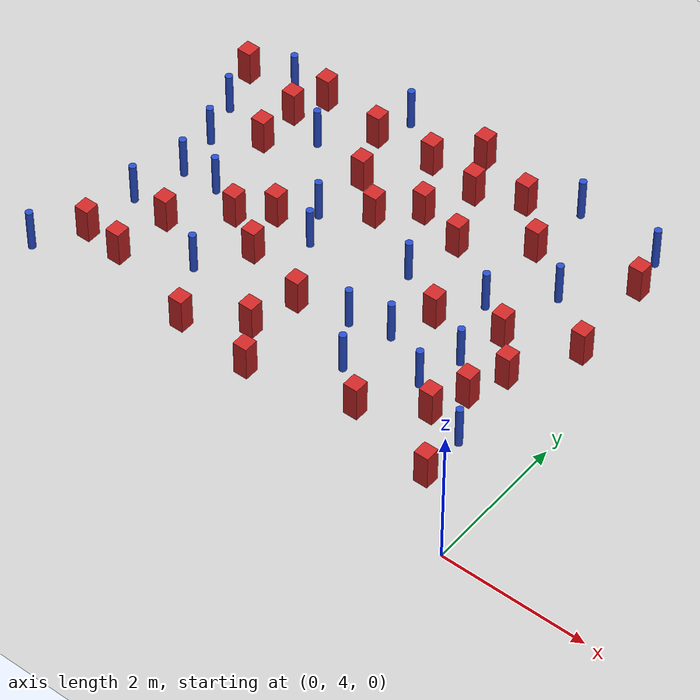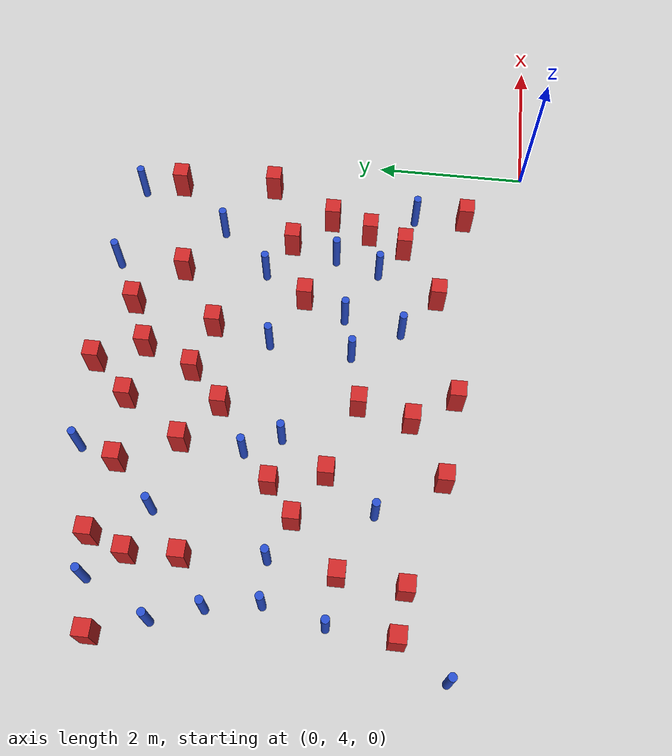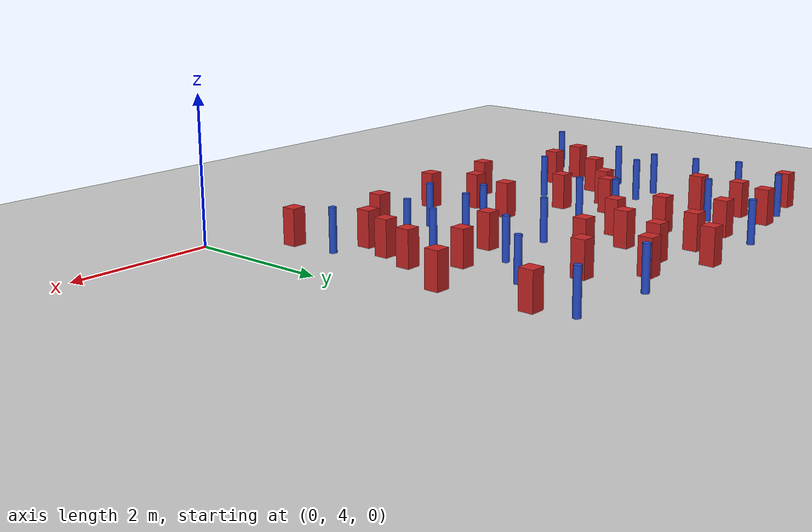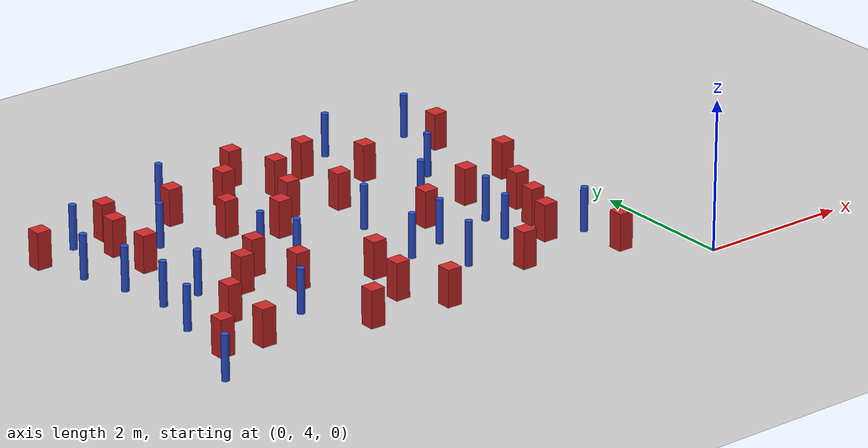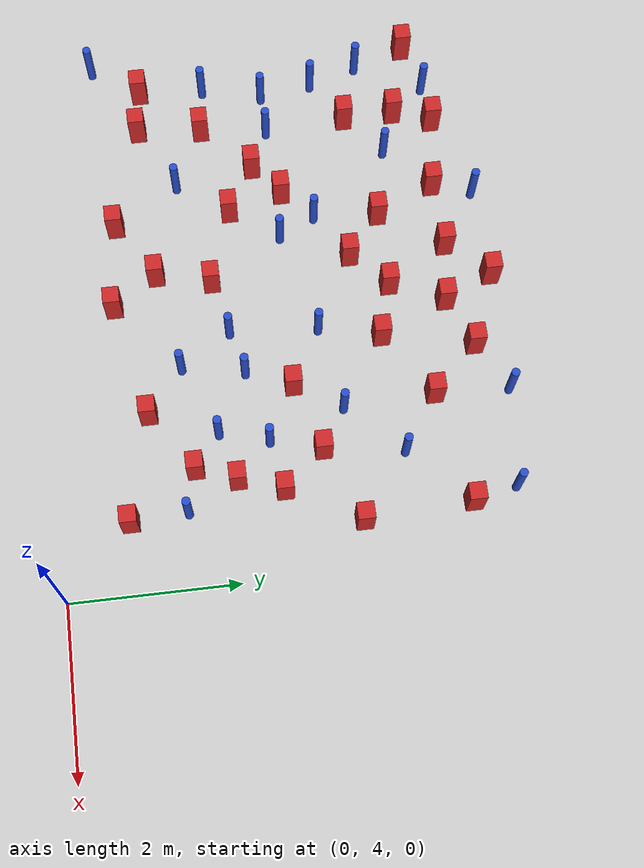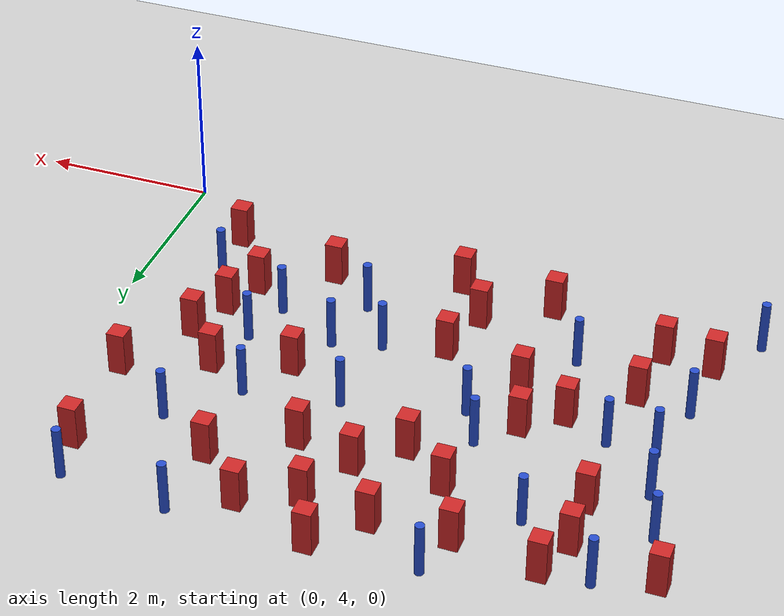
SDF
<sdf version="1.6">
 <world name="default">
  <model name="ground_plane">
   <static>1</static>
   <link name="link">
    <collision name="collision">
     <geometry><plane><normal>0 0 1</normal><size>100 100</size></plane></geometry>
     <surface><friction><ode><mu>100</mu><mu2>50</mu2></ode></friction></surface>
    </collision>
    <visual name="visual">
     <cast_shadows>0</cast_shadows>
     <geometry><plane><normal>0 0 1</normal><size>100 100</size></plane></geometry>
     <material>
      <ambient>1.0 1.0 1.0 1.0</ambient>
      <diffuse>0.8 0.8 0.8 1.0</diffuse>
      <specular>0.01 0.01 0.01 1.000000</specular>
     </material>
    </visual>
   </link>
  </model>
  <model name="square_post_obstacle3">
   <static>true</static>
   <pose>-3.91692092441 7.71348662594 -6.11067671241e-07 -5.50515727128e-06 -8.79689657224e-07 2.37013304536e-05</pose>
   <link name="link">
    <pose>0 0 0.25 0 -0 0</pose>
    <inertial>
     <mass>100</mass>
     <inertia>
      <ixx>0.166667</ixx>
      <ixy>0</ixy>
      <ixz>0</ixz>
      <iyy>0.166667</iyy>
      <iyz>0</iyz>
      <izz>0.166667</izz>
     </inertia>
    </inertial>
    <collision name="collision"><geometry><box><size>.2 .2 .5</size></box></geometry></collision>
    <visual name="visual">
     <geometry><box><size>.2 .2 .5</size></box></geometry>
     <material>
      <script><name>Gazebo/Red</name><uri>file://media/materials/scripts/gazebo.material</uri></script>
     </material>
    </visual>
   </link>
  </model>
  <model name="pole_obstacle2">
   <static>true</static>
   <pose>-1.79308534052 5.89661301325 -9.47619616065e-06 5.49618799737e-07 2.36310414061e-07 -1.550905348e-07</pose>
   <link name="link">
    <pose>0 0 0.3 0 -0 0</pose>
    <inertial>
     <mass>1</mass>
     <inertia><ixx>0.145833</ixx><ixy>0</ixy><ixz>0</ixz><iyy>0.145833</iyy><iyz>0</iyz><izz>0.125</izz></inertia>
    </inertial>
    <collision name="collision">
     <geometry><cylinder><radius>0.05</radius><length>.6</length></cylinder></geometry>
    </collision>
    <visual name="visual">
     <geometry><cylinder><radius>0.05</radius><length>.6</length></cylinder></geometry>
     <material>
      <script><name>Gazebo/Blue</name><uri>file://media/materials/scripts/gazebo.material</uri></script>
     </material>
    </visual>
   </link>
  </model>
  <model name="square_post_obstacle4">
   <static>true</static>
   <pose>-5.88233782899 6.05758240588 -6.11067671241e-07 -5.50515727128e-06 -8.79689657224e-07 2.37013304536e-05</pose>
   <link name="link">
    <pose>0 0 0.25 0 -0 0</pose>
    <inertial>
     <mass>100</mass>
     <inertia>
      <ixx>0.166667</ixx>
      <ixy>0</ixy>
      <ixz>0</ixz>
      <iyy>0.166667</iyy>
      <iyz>0</iyz>
      <izz>0.166667</izz>
     </inertia>
    </inertial>
    <collision name="collision"><geometry><box><size>.2 .2 .5</size></box></geometry></collision>
    <visual name="visual">
     <geometry><box><size>.2 .2 .5</size></box></geometry>
     <material>
      <script><name>Gazebo/Red</name><uri>file://media/materials/scripts/gazebo.material</uri></script>
     </material>
    </visual>
   </link>
  </model>
  <model name="square_post_obstacle6">
   <static>true</static>
   <pose>-5.84509082221 7.88563920167 -6.11067671241e-07 -5.50515727128e-06 -8.79689657224e-07 2.37013304536e-05</pose>
   <link name="link">
    <pose>0 0 0.25 0 -0 0</pose>
    <inertial>
     <mass>100</mass>
     <inertia>
      <ixx>0.166667</ixx>
      <ixy>0</ixy>
      <ixz>0</ixz>
      <iyy>0.166667</iyy>
      <iyz>0</iyz>
      <izz>0.166667</izz>
     </inertia>
    </inertial>
    <collision name="collision"><geometry><box><size>.2 .2 .5</size></box></geometry></collision>
    <visual name="visual">
     <geometry><box><size>.2 .2 .5</size></box></geometry>
     <material>
      <script><name>Gazebo/Red</name><uri>file://media/materials/scripts/gazebo.material</uri></script>
     </material>
    </visual>
   </link>
  </model>
  <model name="square_post_obstacle10">
   <static>true</static>
   <pose>-3.74693229084 5.9982552937 -6.11067671241e-07 -5.50515727128e-06 -8.79689657224e-07 2.37013304536e-05</pose>
   <link name="link">
    <pose>0 0 0.25 0 -0 0</pose>
    <inertial>
     <mass>100</mass>
     <inertia>
      <ixx>0.166667</ixx>
      <ixy>0</ixy>
      <ixz>0</ixz>
      <iyy>0.166667</iyy>
      <iyz>0</iyz>
      <izz>0.166667</izz>
     </inertia>
    </inertial>
    <collision name="collision"><geometry><box><size>.2 .2 .5</size></box></geometry></collision>
    <visual name="visual">
     <geometry><box><size>.2 .2 .5</size></box></geometry>
     <material>
      <script><name>Gazebo/Red</name><uri>file://media/materials/scripts/gazebo.material</uri></script>
     </material>
    </visual>
   </link>
  </model>
  <model name="pole_obstacle11">
   <static>true</static>
   <pose>-6.46527791398 6.12878476912 -9.47619616065e-06 5.49618799737e-07 2.36310414037e-07 -1.55090534814e-07</pose>
   <link name="link">
    <pose>0 0 0.3 0 -0 0</pose>
    <inertial>
     <mass>1</mass>
     <inertia><ixx>0.145833</ixx><ixy>0</ixy><ixz>0</ixz><iyy>0.145833</iyy><iyz>0</iyz><izz>0.125</izz></inertia>
    </inertial>
    <collision name="collision">
     <geometry><cylinder><radius>0.05</radius><length>.6</length></cylinder></geometry>
    </collision>
    <visual name="visual">
     <geometry><cylinder><radius>0.05</radius><length>.6</length></cylinder></geometry>
     <material>
      <script><name>Gazebo/Blue</name><uri>file://media/materials/scripts/gazebo.material</uri></script>
     </material>
    </visual>
   </link>
  </model>
  <model name="square_post_obstacle22">
   <static>true</static>
   <pose>-2.00911658762 8.48687081299 -6.11067671241e-07 -5.50515727128e-06 -8.79689657224e-07 2.37013304536e-05</pose>
   <link name="link">
    <pose>0 0 0.25 0 -0 0</pose>
    <inertial>
     <mass>100</mass>
     <inertia>
      <ixx>0.166667</ixx>
      <ixy>0</ixy>
      <ixz>0</ixz>
      <iyy>0.166667</iyy>
      <iyz>0</iyz>
      <izz>0.166667</izz>
     </inertia>
    </inertial>
    <collision name="collision"><geometry><box><size>.2 .2 .5</size></box></geometry></collision>
    <visual name="visual">
     <geometry><box><size>.2 .2 .5</size></box></geometry>
     <material>
      <script><name>Gazebo/Red</name><uri>file://media/materials/scripts/gazebo.material</uri></script>
     </material>
    </visual>
   </link>
  </model>
  <model name="square_post_obstacle23">
   <static>true</static>
   <pose>-1.46489384743 7.0902224017 -6.11067671241e-07 -5.50515727128e-06 -8.79689657224e-07 2.37013304536e-05</pose>
   <link name="link">
    <pose>0 0 0.25 0 -0 0</pose>
    <inertial>
     <mass>100</mass>
     <inertia>
      <ixx>0.166667</ixx>
      <ixy>0</ixy>
      <ixz>0</ixz>
      <iyy>0.166667</iyy>
      <iyz>0</iyz>
      <izz>0.166667</izz>
     </inertia>
    </inertial>
    <collision name="collision"><geometry><box><size>.2 .2 .5</size></box></geometry></collision>
    <visual name="visual">
     <geometry><box><size>.2 .2 .5</size></box></geometry>
     <material>
      <script><name>Gazebo/Red</name><uri>file://media/materials/scripts/gazebo.material</uri></script>
     </material>
    </visual>
   </link>
  </model>
  <model name="pole_obstacle21">
   <static>true</static>
   <pose>-0.873327895869 5.46064059803 -9.47619616065e-06 5.49618799737e-07 2.36310414065e-07 -1.55090534796e-07</pose>
   <link name="link">
    <pose>0 0 0.3 0 -0 0</pose>
    <inertial>
     <mass>1</mass>
     <inertia><ixx>0.145833</ixx><ixy>0</ixy><ixz>0</ixz><iyy>0.145833</iyy><iyz>0</iyz><izz>0.125</izz></inertia>
    </inertial>
    <collision name="collision">
     <geometry><cylinder><radius>0.05</radius><length>.6</length></cylinder></geometry>
    </collision>
    <visual name="visual">
     <geometry><cylinder><radius>0.05</radius><length>.6</length></cylinder></geometry>
     <material>
      <script><name>Gazebo/Blue</name><uri>file://media/materials/scripts/gazebo.material</uri></script>
     </material>
    </visual>
   </link>
  </model>
  <model name="pole_obstacle22">
   <static>true</static>
   <pose>-4.49709555609 7.34230346113 -9.47619616065e-06 5.49618799737e-07 2.36310414037e-07 -1.55090534814e-07</pose>
   <link name="link">
    <pose>0 0 0.3 0 -0 0</pose>
    <inertial>
     <mass>1</mass>
     <inertia><ixx>0.145833</ixx><ixy>0</ixy><ixz>0</ixz><iyy>0.145833</iyy><iyz>0</iyz><izz>0.125</izz></inertia>
    </inertial>
    <collision name="collision">
     <geometry><cylinder><radius>0.05</radius><length>.6</length></cylinder></geometry>
    </collision>
    <visual name="visual">
     <geometry><cylinder><radius>0.05</radius><length>.6</length></cylinder></geometry>
     <material>
      <script><name>Gazebo/Blue</name><uri>file://media/materials/scripts/gazebo.material</uri></script>
     </material>
    </visual>
   </link>
  </model>
  <model name="square_post_obstacle33">
   <static>true</static>
   <pose>-2.81278633231 7.95836695793 -6.11067671241e-07 -5.50515727128e-06 -8.79689657224e-07 2.37013304536e-05</pose>
   <link name="link">
    <pose>0 0 0.25 0 -0 0</pose>
    <inertial>
     <mass>100</mass>
     <inertia>
      <ixx>0.166667</ixx>
      <ixy>0</ixy>
      <ixz>0</ixz>
      <iyy>0.166667</iyy>
      <iyz>0</iyz>
      <izz>0.166667</izz>
     </inertia>
    </inertial>
    <collision name="collision"><geometry><box><size>.2 .2 .5</size></box></geometry></collision>
    <visual name="visual">
     <geometry><box><size>.2 .2 .5</size></box></geometry>
     <material>
      <script><name>Gazebo/Red</name><uri>file://media/materials/scripts/gazebo.material</uri></script>
     </material>
    </visual>
   </link>
  </model>
  <model name="pole_obstacle41">
   <static>true</static>
   <pose>-2.98705749593 7.2163715595 -9.47619616065e-06 5.49618799738e-07 2.3631041406e-07 -1.55090534801e-07</pose>
   <link name="link">
    <pose>0 0 0.3 0 -0 0</pose>
    <inertial>
     <mass>1</mass>
     <inertia><ixx>0.145833</ixx><ixy>0</ixy><ixz>0</ixz><iyy>0.145833</iyy><iyz>0</iyz><izz>0.125</izz></inertia>
    </inertial>
    <collision name="collision">
     <geometry><cylinder><radius>0.05</radius><length>.6</length></cylinder></geometry>
    </collision>
    <visual name="visual">
     <geometry><cylinder><radius>0.05</radius><length>.6</length></cylinder></geometry>
     <material>
      <script><name>Gazebo/Blue</name><uri>file://media/materials/scripts/gazebo.material</uri></script>
     </material>
    </visual>
   </link>
  </model>
  <model name="pole_obstacle51">
   <static>true</static>
   <pose>-1.33464581827 8.04662129294 -9.47619616065e-06 5.49618799737e-07 2.36310414068e-07 -1.55090534795e-07</pose>
   <link name="link">
    <pose>0 0 0.3 0 -0 0</pose>
    <inertial>
     <mass>1</mass>
     <inertia><ixx>0.145833</ixx><ixy>0</ixy><ixz>0</ixz><iyy>0.145833</iyy><iyz>0</iyz><izz>0.125</izz></inertia>
    </inertial>
    <collision name="collision">
     <geometry><cylinder><radius>0.05</radius><length>.6</length></cylinder></geometry>
    </collision>
    <visual name="visual">
     <geometry><cylinder><radius>0.05</radius><length>.6</length></cylinder></geometry>
     <material>
      <script><name>Gazebo/Blue</name><uri>file://media/materials/scripts/gazebo.material</uri></script>
     </material>
    </visual>
   </link>
  </model>
  <model name="square_post_obstacle61">
   <static>true</static>
   <pose>-4.68518659381 6.30613163396 -6.11067671241e-07 -5.50515727128e-06 -8.79689657224e-07 2.37013304536e-05</pose>
   <link name="link">
    <pose>0 0 0.25 0 -0 0</pose>
    <inertial>
     <mass>100</mass>
     <inertia>
      <ixx>0.166667</ixx>
      <ixy>0</ixy>
      <ixz>0</ixz>
      <iyy>0.166667</iyy>
      <iyz>0</iyz>
      <izz>0.166667</izz>
     </inertia>
    </inertial>
    <collision name="collision"><geometry><box><size>.2 .2 .5</size></box></geometry></collision>
    <visual name="visual">
     <geometry><box><size>.2 .2 .5</size></box></geometry>
     <material>
      <script><name>Gazebo/Red</name><uri>file://media/materials/scripts/gazebo.material</uri></script>
     </material>
    </visual>
   </link>
  </model>
  <model name="pole_obstacle59">
   <static>true</static>
   <pose>-1.62978415537 6.48221818997 -9.47619616065e-06 5.49618799737e-07 2.36310414061e-07 -1.550905348e-07</pose>
   <link name="link">
    <pose>0 0 0.3 0 -0 0</pose>
    <inertial>
     <mass>1</mass>
     <inertia><ixx>0.145833</ixx><ixy>0</ixy><ixz>0</ixz><iyy>0.145833</iyy><iyz>0</iyz><izz>0.125</izz></inertia>
    </inertial>
    <collision name="collision">
     <geometry><cylinder><radius>0.05</radius><length>.6</length></cylinder></geometry>
    </collision>
    <visual name="visual">
     <geometry><cylinder><radius>0.05</radius><length>.6</length></cylinder></geometry>
     <material>
      <script><name>Gazebo/Blue</name><uri>file://media/materials/scripts/gazebo.material</uri></script>
     </material>
    </visual>
   </link>
  </model>
  <model name="pole_obstacle73">
   <static>true</static>
   <pose>-0.767540952679 9.26979487636 -9.47619616065e-06 5.49618799737e-07 2.36310414038e-07 -1.55090534813e-07</pose>
   <link name="link">
    <pose>0 0 0.3 0 -0 0</pose>
    <inertial>
     <mass>1</mass>
     <inertia><ixx>0.145833</ixx><ixy>0</ixy><ixz>0</ixz><iyy>0.145833</iyy><iyz>0</iyz><izz>0.125</izz></inertia>
    </inertial>
    <collision name="collision">
     <geometry><cylinder><radius>0.05</radius><length>.6</length></cylinder></geometry>
    </collision>
    <visual name="visual">
     <geometry><cylinder><radius>0.05</radius><length>.6</length></cylinder></geometry>
     <material>
      <script><name>Gazebo/Blue</name><uri>file://media/materials/scripts/gazebo.material</uri></script>
     </material>
    </visual>
   </link>
  </model>
  <model name="pole_obstacle74">
   <static>true</static>
   <pose>-5.31821730321 8.32935646576 -9.47619616065e-06 5.49618799737e-07 2.36310414065e-07 -1.55090534796e-07</pose>
   <link name="link">
    <pose>0 0 0.3 0 -0 0</pose>
    <inertial>
     <mass>1</mass>
     <inertia><ixx>0.145833</ixx><ixy>0</ixy><ixz>0</ixz><iyy>0.145833</iyy><iyz>0</iyz><izz>0.125</izz></inertia>
    </inertial>
    <collision name="collision">
     <geometry><cylinder><radius>0.05</radius><length>.6</length></cylinder></geometry>
    </collision>
    <visual name="visual">
     <geometry><cylinder><radius>0.05</radius><length>.6</length></cylinder></geometry>
     <material>
      <script><name>Gazebo/Blue</name><uri>file://media/materials/scripts/gazebo.material</uri></script>
     </material>
    </visual>
   </link>
  </model>
  <model name="pole_obstacle78">
   <static>true</static>
   <pose>-1.9490535878 7.3943124327 -9.47619616065e-06 5.49618799737e-07 2.36310414061e-07 -1.550905348e-07</pose>
   <link name="link">
    <pose>0 0 0.3 0 -0 0</pose>
    <inertial>
     <mass>1</mass>
     <inertia><ixx>0.145833</ixx><ixy>0</ixy><ixz>0</ixz><iyy>0.145833</iyy><iyz>0</iyz><izz>0.125</izz></inertia>
    </inertial>
    <collision name="collision">
     <geometry><cylinder><radius>0.05</radius><length>.6</length></cylinder></geometry>
    </collision>
    <visual name="visual">
     <geometry><cylinder><radius>0.05</radius><length>.6</length></cylinder></geometry>
     <material>
      <script><name>Gazebo/Blue</name><uri>file://media/materials/scripts/gazebo.material</uri></script>
     </material>
    </visual>
   </link>
  </model>
  <model name="square_post_obstacle81">
   <static>true</static>
   <pose>-3.19252837803 8.79441362589 -6.11067671241e-07 -5.50515727128e-06 -8.79689657224e-07 2.37013304536e-05</pose>
   <link name="link">
    <pose>0 0 0.25 0 -0 0</pose>
    <inertial>
     <mass>100</mass>
     <inertia>
      <ixx>0.166667</ixx>
      <ixy>0</ixy>
      <ixz>0</ixz>
      <iyy>0.166667</iyy>
      <iyz>0</iyz>
      <izz>0.166667</izz>
     </inertia>
    </inertial>
    <collision name="collision"><geometry><box><size>.2 .2 .5</size></box></geometry></collision>
    <visual name="visual">
     <geometry><box><size>.2 .2 .5</size></box></geometry>
     <material>
      <script><name>Gazebo/Red</name><uri>file://media/materials/scripts/gazebo.material</uri></script>
     </material>
    </visual>
   </link>
  </model>
  <model name="pole_obstacle88">
   <static>true</static>
   <pose>-6.59553380174 8.12620464739 -9.47619616065e-06 5.49618799737e-07 2.36310414065e-07 -1.55090534796e-07</pose>
   <link name="link">
    <pose>0 0 0.3 0 -0 0</pose>
    <inertial>
     <mass>1</mass>
     <inertia><ixx>0.145833</ixx><ixy>0</ixy><ixz>0</ixz><iyy>0.145833</iyy><iyz>0</iyz><izz>0.125</izz></inertia>
    </inertial>
    <collision name="collision">
     <geometry><cylinder><radius>0.05</radius><length>.6</length></cylinder></geometry>
    </collision>
    <visual name="visual">
     <geometry><cylinder><radius>0.05</radius><length>.6</length></cylinder></geometry>
     <material>
      <script><name>Gazebo/Blue</name><uri>file://media/materials/scripts/gazebo.material</uri></script>
     </material>
    </visual>
   </link>
  </model>
  <model name="pole_obstacle95">
   <static>true</static>
   <pose>-2.65871399994 5.53203938434 -9.47619616065e-06 5.49618799738e-07 2.3631041406e-07 -1.55090534801e-07</pose>
   <link name="link">
    <pose>0 0 0.3 0 -0 0</pose>
    <inertial>
     <mass>1</mass>
     <inertia><ixx>0.145833</ixx><ixy>0</ixy><ixz>0</ixz><iyy>0.145833</iyy><iyz>0</iyz><izz>0.125</izz></inertia>
    </inertial>
    <collision name="collision">
     <geometry><cylinder><radius>0.05</radius><length>.6</length></cylinder></geometry>
    </collision>
    <visual name="visual">
     <geometry><cylinder><radius>0.05</radius><length>.6</length></cylinder></geometry>
     <material>
      <script><name>Gazebo/Blue</name><uri>file://media/materials/scripts/gazebo.material</uri></script>
     </material>
    </visual>
   </link>
  </model>
  <model name="square_post_obstacle84">
   <static>true</static>
   <pose>-2.29603760478 6.83342426182 -6.11067671241e-07 -5.50515727128e-06 -8.79689657224e-07 2.37013304536e-05</pose>
   <link name="link">
    <pose>0 0 0.25 0 -0 0</pose>
    <inertial>
     <mass>100</mass>
     <inertia>
      <ixx>0.166667</ixx>
      <ixy>0</ixy>
      <ixz>0</ixz>
      <iyy>0.166667</iyy>
      <iyz>0</iyz>
      <izz>0.166667</izz>
     </inertia>
    </inertial>
    <collision name="collision"><geometry><box><size>.2 .2 .5</size></box></geometry></collision>
    <visual name="visual">
     <geometry><box><size>.2 .2 .5</size></box></geometry>
     <material>
      <script><name>Gazebo/Red</name><uri>file://media/materials/scripts/gazebo.material</uri></script>
     </material>
    </visual>
   </link>
  </model>
  <model name="square_post_obstacle88">
   <static>true</static>
   <pose>-1.38786901065 5.58563321085 -6.11067671241e-07 -5.50515727128e-06 -8.79689657224e-07 2.37013304536e-05</pose>
   <link name="link">
    <pose>0 0 0.25 0 -0 0</pose>
    <inertial>
     <mass>100</mass>
     <inertia>
      <ixx>0.166667</ixx>
      <ixy>0</ixy>
      <ixz>0</ixz>
      <iyy>0.166667</iyy>
      <iyz>0</iyz>
      <izz>0.166667</izz>
     </inertia>
    </inertial>
    <collision name="collision"><geometry><box><size>.2 .2 .5</size></box></geometry></collision>
    <visual name="visual">
     <geometry><box><size>.2 .2 .5</size></box></geometry>
     <material>
      <script><name>Gazebo/Red</name><uri>file://media/materials/scripts/gazebo.material</uri></script>
     </material>
    </visual>
   </link>
  </model>
  <model name="square_post_obstacle89">
   <static>true</static>
   <pose>-0.648709372479 8.74227488115 -6.11067671241e-07 -5.50515727128e-06 -8.79689657224e-07 2.37013304536e-05</pose>
   <link name="link">
    <pose>0 0 0.25 0 -0 0</pose>
    <inertial>
     <mass>100</mass>
     <inertia>
      <ixx>0.166667</ixx>
      <ixy>0</ixy>
      <ixz>0</ixz>
      <iyy>0.166667</iyy>
      <iyz>0</iyz>
      <izz>0.166667</izz>
     </inertia>
    </inertial>
    <collision name="collision"><geometry><box><size>.2 .2 .5</size></box></geometry></collision>
    <visual name="visual">
     <geometry><box><size>.2 .2 .5</size></box></geometry>
     <material>
      <script><name>Gazebo/Red</name><uri>file://media/materials/scripts/gazebo.material</uri></script>
     </material>
    </visual>
   </link>
  </model>
  <model name="pole_obstacle104">
   <static>true</static>
   <pose>-6.40070165908 7.52280020882 -9.47619616065e-06 5.49618799737e-07 2.36310414037e-07 -1.55090534814e-07</pose>
   <link name="link">
    <pose>0 0 0.3 0 -0 0</pose>
    <inertial>
     <mass>1</mass>
     <inertia><ixx>0.145833</ixx><ixy>0</ixy><ixz>0</ixz><iyy>0.145833</iyy><iyz>0</iyz><izz>0.125</izz></inertia>
    </inertial>
    <collision name="collision">
     <geometry><cylinder><radius>0.05</radius><length>.6</length></cylinder></geometry>
    </collision>
    <visual name="visual">
     <geometry><cylinder><radius>0.05</radius><length>.6</length></cylinder></geometry>
     <material>
      <script><name>Gazebo/Blue</name><uri>file://media/materials/scripts/gazebo.material</uri></script>
     </material>
    </visual>
   </link>
  </model>
  <model name="square_post_obstacle92">
   <static>true</static>
   <pose>-2.1217191734 5.09722221641 -6.11067671241e-07 -5.50515727128e-06 -8.79689657224e-07 2.37013304536e-05</pose>
   <link name="link">
    <pose>0 0 0.25 0 -0 0</pose>
    <inertial>
     <mass>100</mass>
     <inertia>
      <ixx>0.166667</ixx>
      <ixy>0</ixy>
      <ixz>0</ixz>
      <iyy>0.166667</iyy>
      <iyz>0</iyz>
      <izz>0.166667</izz>
     </inertia>
    </inertial>
    <collision name="collision"><geometry><box><size>.2 .2 .5</size></box></geometry></collision>
    <visual name="visual">
     <geometry><box><size>.2 .2 .5</size></box></geometry>
     <material>
      <script><name>Gazebo/Red</name><uri>file://media/materials/scripts/gazebo.material</uri></script>
     </material>
    </visual>
   </link>
  </model>
  <model name="square_post_obstacle93">
   <static>true</static>
   <pose>-4.43774761824 8.13190515887 -6.11067671241e-07 -5.50515727128e-06 -8.79689657224e-07 2.37013304536e-05</pose>
   <link name="link">
    <pose>0 0 0.25 0 -0 0</pose>
    <inertial>
     <mass>100</mass>
     <inertia>
      <ixx>0.166667</ixx>
      <ixy>0</ixy>
      <ixz>0</ixz>
      <iyy>0.166667</iyy>
      <iyz>0</iyz>
      <izz>0.166667</izz>
     </inertia>
    </inertial>
    <collision name="collision"><geometry><box><size>.2 .2 .5</size></box></geometry></collision>
    <visual name="visual">
     <geometry><box><size>.2 .2 .5</size></box></geometry>
     <material>
      <script><name>Gazebo/Red</name><uri>file://media/materials/scripts/gazebo.material</uri></script>
     </material>
    </visual>
   </link>
  </model>
  <model name="square_post_obstacle104">
   <static>true</static>
   <pose>-5.86701262663 8.51585811733 -6.11067671241e-07 -5.50515727128e-06 -8.79689657224e-07 2.37013304536e-05</pose>
   <link name="link">
    <pose>0 0 0.25 0 -0 0</pose>
    <inertial>
     <mass>100</mass>
     <inertia>
      <ixx>0.166667</ixx>
      <ixy>0</ixy>
      <ixz>0</ixz>
      <iyy>0.166667</iyy>
      <iyz>0</iyz>
      <izz>0.166667</izz>
     </inertia>
    </inertial>
    <collision name="collision"><geometry><box><size>.2 .2 .5</size></box></geometry></collision>
    <visual name="visual">
     <geometry><box><size>.2 .2 .5</size></box></geometry>
     <material>
      <script><name>Gazebo/Red</name><uri>file://media/materials/scripts/gazebo.material</uri></script>
     </material>
    </visual>
   </link>
  </model>
  <model name="square_post_obstacle108">
   <static>true</static>
   <pose>-6.80655171674 8.76389150875 -6.11067671241e-07 -5.50515727128e-06 -8.79689657224e-07 2.37013304536e-05</pose>
   <link name="link">
    <pose>0 0 0.25 0 -0 0</pose>
    <inertial>
     <mass>100</mass>
     <inertia>
      <ixx>0.166667</ixx>
      <ixy>0</ixy>
      <ixz>0</ixz>
      <iyy>0.166667</iyy>
      <iyz>0</iyz>
      <izz>0.166667</izz>
     </inertia>
    </inertial>
    <collision name="collision"><geometry><box><size>.2 .2 .5</size></box></geometry></collision>
    <visual name="visual">
     <geometry><box><size>.2 .2 .5</size></box></geometry>
     <material>
      <script><name>Gazebo/Red</name><uri>file://media/materials/scripts/gazebo.material</uri></script>
     </material>
    </visual>
   </link>
  </model>
  <model name="square_post_obstacle111">
   <static>true</static>
   <pose>-1.02712270684 6.59089741338 -6.11067671241e-07 -5.50515727128e-06 -8.79689657224e-07 2.37013304536e-05</pose>
   <link name="link">
    <pose>0 0 0.25 0 -0 0</pose>
    <inertial>
     <mass>100</mass>
     <inertia>
      <ixx>0.166667</ixx>
      <ixy>0</ixy>
      <ixz>0</ixz>
      <iyy>0.166667</iyy>
      <iyz>0</iyz>
      <izz>0.166667</izz>
     </inertia>
    </inertial>
    <collision name="collision"><geometry><box><size>.2 .2 .5</size></box></geometry></collision>
    <visual name="visual">
     <geometry><box><size>.2 .2 .5</size></box></geometry>
     <material>
      <script><name>Gazebo/Red</name><uri>file://media/materials/scripts/gazebo.material</uri></script>
     </material>
    </visual>
   </link>
  </model>
  <model name="pole_obstacle120">
   <static>true</static>
   <pose>-4.61848486009 9.35168371952 -9.47619616065e-06 5.49618799737e-07 2.36310414065e-07 -1.55090534796e-07</pose>
   <link name="link">
    <pose>0 0 0.3 0 -0 0</pose>
    <inertial>
     <mass>1</mass>
     <inertia><ixx>0.145833</ixx><ixy>0</ixy><ixz>0</ixz><iyy>0.145833</iyy><iyz>0</iyz><izz>0.125</izz></inertia>
    </inertial>
    <collision name="collision">
     <geometry><cylinder><radius>0.05</radius><length>.6</length></cylinder></geometry>
    </collision>
    <visual name="visual">
     <geometry><cylinder><radius>0.05</radius><length>.6</length></cylinder></geometry>
     <material>
      <script><name>Gazebo/Blue</name><uri>file://media/materials/scripts/gazebo.material</uri></script>
     </material>
    </visual>
   </link>
  </model>
  <model name="pole_obstacle125">
   <static>true</static>
   <pose>-6.29127388454 6.87289369416 -9.47619616065e-06 5.49618799737e-07 2.36310414037e-07 -1.55090534814e-07</pose>
   <link name="link">
    <pose>0 0 0.3 0 -0 0</pose>
    <inertial>
     <mass>1</mass>
     <inertia><ixx>0.145833</ixx><ixy>0</ixy><ixz>0</ixz><iyy>0.145833</iyy><iyz>0</iyz><izz>0.125</izz></inertia>
    </inertial>
    <collision name="collision">
     <geometry><cylinder><radius>0.05</radius><length>.6</length></cylinder></geometry>
    </collision>
    <visual name="visual">
     <geometry><cylinder><radius>0.05</radius><length>.6</length></cylinder></geometry>
     <material>
      <script><name>Gazebo/Blue</name><uri>file://media/materials/scripts/gazebo.material</uri></script>
     </material>
    </visual>
   </link>
  </model>
  <model name="pole_obstacle131">
   <static>true</static>
   <pose>-2.52102203237 6.28434623397 -9.47619616065e-06 5.49618799738e-07 2.3631041406e-07 -1.55090534801e-07</pose>
   <link name="link">
    <pose>0 0 0.3 0 -0 0</pose>
    <inertial>
     <mass>1</mass>
     <inertia><ixx>0.145833</ixx><ixy>0</ixy><ixz>0</ixz><iyy>0.145833</iyy><iyz>0</iyz><izz>0.125</izz></inertia>
    </inertial>
    <collision name="collision">
     <geometry><cylinder><radius>0.05</radius><length>.6</length></cylinder></geometry>
    </collision>
    <visual name="visual">
     <geometry><cylinder><radius>0.05</radius><length>.6</length></cylinder></geometry>
     <material>
      <script><name>Gazebo/Blue</name><uri>file://media/materials/scripts/gazebo.material</uri></script>
     </material>
    </visual>
   </link>
  </model>
  <model name="square_post_obstacle116">
   <static>true</static>
   <pose>-1.2057607276 6.06311899068 -6.11067671241e-07 -5.50515727128e-06 -8.79689657224e-07 2.37013304536e-05</pose>
   <link name="link">
    <pose>0 0 0.25 0 -0 0</pose>
    <inertial>
     <mass>100</mass>
     <inertia>
      <ixx>0.166667</ixx>
      <ixy>0</ixy>
      <ixz>0</ixz>
      <iyy>0.166667</iyy>
      <iyz>0</iyz>
      <izz>0.166667</izz>
     </inertia>
    </inertial>
    <collision name="collision"><geometry><box><size>.2 .2 .5</size></box></geometry></collision>
    <visual name="visual">
     <geometry><box><size>.2 .2 .5</size></box></geometry>
     <material>
      <script><name>Gazebo/Red</name><uri>file://media/materials/scripts/gazebo.material</uri></script>
     </material>
    </visual>
   </link>
  </model>
  <model name="square_post_obstacle118">
   <static>true</static>
   <pose>-3.93224918056 8.89654323262 -6.11067671241e-07 -5.50515727128e-06 -8.79689657224e-07 2.37013304536e-05</pose>
   <link name="link">
    <pose>0 0 0.25 0 -0 0</pose>
    <inertial>
     <mass>100</mass>
     <inertia>
      <ixx>0.166667</ixx>
      <ixy>0</ixy>
      <ixz>0</ixz>
      <iyy>0.166667</iyy>
      <iyz>0</iyz>
      <izz>0.166667</izz>
     </inertia>
    </inertial>
    <collision name="collision"><geometry><box><size>.2 .2 .5</size></box></geometry></collision>
    <visual name="visual">
     <geometry><box><size>.2 .2 .5</size></box></geometry>
     <material>
      <script><name>Gazebo/Red</name><uri>file://media/materials/scripts/gazebo.material</uri></script>
     </material>
    </visual>
   </link>
  </model>
  <model name="square_post_obstacle126">
   <static>true</static>
   <pose>-0.566222941977 7.45669554354 -6.11067671241e-07 -5.50515727128e-06 -8.79689657224e-07 2.37013304536e-05</pose>
   <link name="link">
    <pose>0 0 0.25 0 -0 0</pose>
    <inertial>
     <mass>100</mass>
     <inertia>
      <ixx>0.166667</ixx>
      <ixy>0</ixy>
      <ixz>0</ixz>
      <iyy>0.166667</iyy>
      <iyz>0</iyz>
      <izz>0.166667</izz>
     </inertia>
    </inertial>
    <collision name="collision"><geometry><box><size>.2 .2 .5</size></box></geometry></collision>
    <visual name="visual">
     <geometry><box><size>.2 .2 .5</size></box></geometry>
     <material>
      <script><name>Gazebo/Red</name><uri>file://media/materials/scripts/gazebo.material</uri></script>
     </material>
    </visual>
   </link>
  </model>
  <model name="square_post_obstacle132">
   <static>true</static>
   <pose>-2.58028805157 9.05578823174 -6.11067671241e-07 -5.50515727128e-06 -8.79689657224e-07 2.37013304536e-05</pose>
   <link name="link">
    <pose>0 0 0.25 0 -0 0</pose>
    <inertial>
     <mass>100</mass>
     <inertia>
      <ixx>0.166667</ixx>
      <ixy>0</ixy>
      <ixz>0</ixz>
      <iyy>0.166667</iyy>
      <iyz>0</iyz>
      <izz>0.166667</izz>
     </inertia>
    </inertial>
    <collision name="collision"><geometry><box><size>.2 .2 .5</size></box></geometry></collision>
    <visual name="visual">
     <geometry><box><size>.2 .2 .5</size></box></geometry>
     <material>
      <script><name>Gazebo/Red</name><uri>file://media/materials/scripts/gazebo.material</uri></script>
     </material>
    </visual>
   </link>
  </model>
  <model name="pole_obstacle143">
   <static>true</static>
   <pose>-3.05928436191 6.14776730777 -9.47619616065e-06 5.49618799738e-07 2.3631041406e-07 -1.55090534801e-07</pose>
   <link name="link">
    <pose>0 0 0.3 0 -0 0</pose>
    <inertial>
     <mass>1</mass>
     <inertia><ixx>0.145833</ixx><ixy>0</ixy><ixz>0</ixz><iyy>0.145833</iyy><iyz>0</iyz><izz>0.125</izz></inertia>
    </inertial>
    <collision name="collision">
     <geometry><cylinder><radius>0.05</radius><length>.6</length></cylinder></geometry>
    </collision>
    <visual name="visual">
     <geometry><cylinder><radius>0.05</radius><length>.6</length></cylinder></geometry>
     <material>
      <script><name>Gazebo/Blue</name><uri>file://media/materials/scripts/gazebo.material</uri></script>
     </material>
    </visual>
   </link>
  </model>
  <model name="square_post_obstacle140">
   <static>true</static>
   <pose>-3.4733420732 8.14163016998 -6.11067671241e-07 -5.50515727128e-06 -8.79689657224e-07 2.37013304536e-05</pose>
   <link name="link">
    <pose>0 0 0.25 0 -0 0</pose>
    <inertial>
     <mass>100</mass>
     <inertia>
      <ixx>0.166667</ixx>
      <ixy>0</ixy>
      <ixz>0</ixz>
      <iyy>0.166667</iyy>
      <iyz>0</iyz>
      <izz>0.166667</izz>
     </inertia>
    </inertial>
    <collision name="collision"><geometry><box><size>.2 .2 .5</size></box></geometry></collision>
    <visual name="visual">
     <geometry><box><size>.2 .2 .5</size></box></geometry>
     <material>
      <script><name>Gazebo/Red</name><uri>file://media/materials/scripts/gazebo.material</uri></script>
     </material>
    </visual>
   </link>
  </model>
  <model name="pole_obstacle149">
   <static>true</static>
   <pose>-5.11182326667 5.68097141598 -9.47619616065e-06 5.49618799737e-07 2.36310414037e-07 -1.55090534814e-07</pose>
   <link name="link">
    <pose>0 0 0.3 0 -0 0</pose>
    <inertial>
     <mass>1</mass>
     <inertia><ixx>0.145833</ixx><ixy>0</ixy><ixz>0</ixz><iyy>0.145833</iyy><iyz>0</iyz><izz>0.125</izz></inertia>
    </inertial>
    <collision name="collision">
     <geometry><cylinder><radius>0.05</radius><length>.6</length></cylinder></geometry>
    </collision>
    <visual name="visual">
     <geometry><cylinder><radius>0.05</radius><length>.6</length></cylinder></geometry>
     <material>
      <script><name>Gazebo/Blue</name><uri>file://media/materials/scripts/gazebo.material</uri></script>
     </material>
    </visual>
   </link>
  </model>
  <model name="square_post_obstacle143">
   <static>true</static>
   <pose>-0.838265689774 4.78640038615 -6.11067671241e-07 -5.50515727128e-06 -8.79689657224e-07 2.37013304536e-05</pose>
   <link name="link">
    <pose>0 0 0.25 0 -0 0</pose>
    <inertial>
     <mass>100</mass>
     <inertia>
      <ixx>0.166667</ixx>
      <ixy>0</ixy>
      <ixz>0</ixz>
      <iyy>0.166667</iyy>
      <iyz>0</iyz>
      <izz>0.166667</izz>
     </inertia>
    </inertial>
    <collision name="collision"><geometry><box><size>.2 .2 .5</size></box></geometry></collision>
    <visual name="visual">
     <geometry><box><size>.2 .2 .5</size></box></geometry>
     <material>
      <script><name>Gazebo/Red</name><uri>file://media/materials/scripts/gazebo.material</uri></script>
     </material>
    </visual>
   </link>
  </model>
  <model name="pole_obstacle161">
   <static>true</static>
   <pose>-5.77270317852 6.88423311677 -9.47619616065e-06 5.49618799737e-07 2.36310414037e-07 -1.55090534814e-07</pose>
   <link name="link">
    <pose>0 0 0.3 0 -0 0</pose>
    <inertial>
     <mass>1</mass>
     <inertia><ixx>0.145833</ixx><ixy>0</ixy><ixz>0</ixz><iyy>0.145833</iyy><iyz>0</iyz><izz>0.125</izz></inertia>
    </inertial>
    <collision name="collision">
     <geometry><cylinder><radius>0.05</radius><length>.6</length></cylinder></geometry>
    </collision>
    <visual name="visual">
     <geometry><cylinder><radius>0.05</radius><length>.6</length></cylinder></geometry>
     <material>
      <script><name>Gazebo/Blue</name><uri>file://media/materials/scripts/gazebo.material</uri></script>
     </material>
    </visual>
   </link>
  </model>
  <model name="square_post_obstacle164">
   <static>true</static>
   <pose>-3.54100998545 4.78831110892 -6.11067671241e-07 -5.50515727128e-06 -8.79689657224e-07 2.37013304536e-05</pose>
   <link name="link">
    <pose>0 0 0.25 0 -0 0</pose>
    <inertial>
     <mass>100</mass>
     <inertia>
      <ixx>0.166667</ixx>
      <ixy>0</ixy>
      <ixz>0</ixz>
      <iyy>0.166667</iyy>
      <iyz>0</iyz>
      <izz>0.166667</izz>
     </inertia>
    </inertial>
    <collision name="collision"><geometry><box><size>.2 .2 .5</size></box></geometry></collision>
    <visual name="visual">
     <geometry><box><size>.2 .2 .5</size></box></geometry>
     <material>
      <script><name>Gazebo/Red</name><uri>file://media/materials/scripts/gazebo.material</uri></script>
     </material>
    </visual>
   </link>
  </model>
  <model name="square_post_obstacle165">
   <static>true</static>
   <pose>-5.27273891451 6.64815632931 -6.11067671241e-07 -5.50515727128e-06 -8.79689657224e-07 2.37013304536e-05</pose>
   <link name="link">
    <pose>0 0 0.25 0 -0 0</pose>
    <inertial>
     <mass>100</mass>
     <inertia>
      <ixx>0.166667</ixx>
      <ixy>0</ixy>
      <ixz>0</ixz>
      <iyy>0.166667</iyy>
      <iyz>0</iyz>
      <izz>0.166667</izz>
     </inertia>
    </inertial>
    <collision name="collision"><geometry><box><size>.2 .2 .5</size></box></geometry></collision>
    <visual name="visual">
     <geometry><box><size>.2 .2 .5</size></box></geometry>
     <material>
      <script><name>Gazebo/Red</name><uri>file://media/materials/scripts/gazebo.material</uri></script>
     </material>
    </visual>
   </link>
  </model>
  <model name="square_post_obstacle167">
   <static>true</static>
   <pose>-3.90753269853 5.32882041448 -6.11067671241e-07 -5.50515727128e-06 -8.79689657224e-07 2.37013304536e-05</pose>
   <link name="link">
    <pose>0 0 0.25 0 -0 0</pose>
    <inertial>
     <mass>100</mass>
     <inertia>
      <ixx>0.166667</ixx>
      <ixy>0</ixy>
      <ixz>0</ixz>
      <iyy>0.166667</iyy>
      <iyz>0</iyz>
      <izz>0.166667</izz>
     </inertia>
    </inertial>
    <collision name="collision"><geometry><box><size>.2 .2 .5</size></box></geometry></collision>
    <visual name="visual">
     <geometry><box><size>.2 .2 .5</size></box></geometry>
     <material>
      <script><name>Gazebo/Red</name><uri>file://media/materials/scripts/gazebo.material</uri></script>
     </material>
    </visual>
   </link>
  </model>
  <model name="pole_obstacle181">
   <static>true</static>
   <pose>-1.9711065005 9.38694391403 -9.47619616065e-06 5.49618799737e-07 2.36310414046e-07 -1.55090534809e-07</pose>
   <link name="link">
    <pose>0 0 0.3 0 -0 0</pose>
    <inertial>
     <mass>1</mass>
     <inertia><ixx>0.145833</ixx><ixy>0</ixy><ixz>0</ixz><iyy>0.145833</iyy><iyz>0</iyz><izz>0.125</izz></inertia>
    </inertial>
    <collision name="collision">
     <geometry><cylinder><radius>0.05</radius><length>.6</length></cylinder></geometry>
    </collision>
    <visual name="visual">
     <geometry><cylinder><radius>0.05</radius><length>.6</length></cylinder></geometry>
     <material>
      <script><name>Gazebo/Blue</name><uri>file://media/materials/scripts/gazebo.material</uri></script>
     </material>
    </visual>
   </link>
  </model>
  <model name="pole_obstacle197">
   <static>true</static>
   <pose>-4.26918407344 6.89590581094 -9.47619616065e-06 5.49618799737e-07 2.36310414037e-07 -1.55090534814e-07</pose>
   <link name="link">
    <pose>0 0 0.3 0 -0 0</pose>
    <inertial>
     <mass>1</mass>
     <inertia><ixx>0.145833</ixx><ixy>0</ixy><ixz>0</ixz><iyy>0.145833</iyy><iyz>0</iyz><izz>0.125</izz></inertia>
    </inertial>
    <collision name="collision">
     <geometry><cylinder><radius>0.05</radius><length>.6</length></cylinder></geometry>
    </collision>
    <visual name="visual">
     <geometry><cylinder><radius>0.05</radius><length>.6</length></cylinder></geometry>
     <material>
      <script><name>Gazebo/Blue</name><uri>file://media/materials/scripts/gazebo.material</uri></script>
     </material>
    </visual>
   </link>
  </model>
  <model name="square_post_obstacle196">
   <static>true</static>
   <pose>-5.6962067512 8.99133569117 -6.11067671241e-07 -5.50515727128e-06 -8.79689657224e-07 2.37013304536e-05</pose>
   <link name="link">
    <pose>0 0 0.25 0 -0 0</pose>
    <inertial>
     <mass>100</mass>
     <inertia>
      <ixx>0.166667</ixx>
      <ixy>0</ixy>
      <ixz>0</ixz>
      <iyy>0.166667</iyy>
      <iyz>0</iyz>
      <izz>0.166667</izz>
     </inertia>
    </inertial>
    <collision name="collision"><geometry><box><size>.2 .2 .5</size></box></geometry></collision>
    <visual name="visual">
     <geometry><box><size>.2 .2 .5</size></box></geometry>
     <material>
      <script><name>Gazebo/Red</name><uri>file://media/materials/scripts/gazebo.material</uri></script>
     </material>
    </visual>
   </link>
  </model>
  <model name="square_post_obstacle197">
   <static>true</static>
   <pose>-4.86928758429 6.97392199082 -6.11067671241e-07 -5.50515727128e-06 -8.79689657224e-07 2.37013304536e-05</pose>
   <link name="link">
    <pose>0 0 0.25 0 -0 0</pose>
    <inertial>
     <mass>100</mass>
     <inertia>
      <ixx>0.166667</ixx>
      <ixy>0</ixy>
      <ixz>0</ixz>
      <iyy>0.166667</iyy>
      <iyz>0</iyz>
      <izz>0.166667</izz>
     </inertia>
    </inertial>
    <collision name="collision"><geometry><box><size>.2 .2 .5</size></box></geometry></collision>
    <visual name="visual">
     <geometry><box><size>.2 .2 .5</size></box></geometry>
     <material>
      <script><name>Gazebo/Red</name><uri>file://media/materials/scripts/gazebo.material</uri></script>
     </material>
    </visual>
   </link>
  </model>
  <model name="pole_obstacle214">
   <static>true</static>
   <pose>-6.19473181972 8.94779257767 -9.47619616065e-06 5.49618799737e-07 2.36310414065e-07 -1.55090534796e-07</pose>
   <link name="link">
    <pose>0 0 0.3 0 -0 0</pose>
    <inertial>
     <mass>1</mass>
     <inertia><ixx>0.145833</ixx><ixy>0</ixy><ixz>0</ixz><iyy>0.145833</iyy><iyz>0</iyz><izz>0.125</izz></inertia>
    </inertial>
    <collision name="collision">
     <geometry><cylinder><radius>0.05</radius><length>.6</length></cylinder></geometry>
    </collision>
    <visual name="visual">
     <geometry><cylinder><radius>0.05</radius><length>.6</length></cylinder></geometry>
     <material>
      <script><name>Gazebo/Blue</name><uri>file://media/materials/scripts/gazebo.material</uri></script>
     </material>
    </visual>
   </link>
  </model>
  <model name="pole_obstacle215">
   <static>true</static>
   <pose>-6.91370293465 4.73077652376 -9.47619616065e-06 5.49618799737e-07 2.36310414037e-07 -1.55090534814e-07</pose>
   <link name="link">
    <pose>0 0 0.3 0 -0 0</pose>
    <inertial>
     <mass>1</mass>
     <inertia><ixx>0.145833</ixx><ixy>0</ixy><ixz>0</ixz><iyy>0.145833</iyy><iyz>0</iyz><izz>0.125</izz></inertia>
    </inertial>
    <collision name="collision">
     <geometry><cylinder><radius>0.05</radius><length>.6</length></cylinder></geometry>
    </collision>
    <visual name="visual">
     <geometry><cylinder><radius>0.05</radius><length>.6</length></cylinder></geometry>
     <material>
      <script><name>Gazebo/Blue</name><uri>file://media/materials/scripts/gazebo.material</uri></script>
     </material>
    </visual>
   </link>
  </model>
  <model name="square_post_obstacle200">
   <static>true</static>
   <pose>-5.96054193972 5.26286455881 -6.11067671241e-07 -5.50515727128e-06 -8.79689657224e-07 2.37013304536e-05</pose>
   <link name="link">
    <pose>0 0 0.25 0 -0 0</pose>
    <inertial>
     <mass>100</mass>
     <inertia>
      <ixx>0.166667</ixx>
      <ixy>0</ixy>
      <ixz>0</ixz>
      <iyy>0.166667</iyy>
      <iyz>0</iyz>
      <izz>0.166667</izz>
     </inertia>
    </inertial>
    <collision name="collision"><geometry><box><size>.2 .2 .5</size></box></geometry></collision>
    <visual name="visual">
     <geometry><box><size>.2 .2 .5</size></box></geometry>
     <material>
      <script><name>Gazebo/Red</name><uri>file://media/materials/scripts/gazebo.material</uri></script>
     </material>
    </visual>
   </link>
  </model>
  <model name="square_post_obstacle202">
   <static>true</static>
   <pose>-6.51935221618 5.32427790186 -6.11067671241e-07 -5.50515727128e-06 -8.79689657224e-07 2.37013304536e-05</pose>
   <link name="link">
    <pose>0 0 0.25 0 -0 0</pose>
    <inertial>
     <mass>100</mass>
     <inertia>
      <ixx>0.166667</ixx>
      <ixy>0</ixy>
      <ixz>0</ixz>
      <iyy>0.166667</iyy>
      <iyz>0</iyz>
      <izz>0.166667</izz>
     </inertia>
    </inertial>
    <collision name="collision"><geometry><box><size>.2 .2 .5</size></box></geometry></collision>
    <visual name="visual">
     <geometry><box><size>.2 .2 .5</size></box></geometry>
     <material>
      <script><name>Gazebo/Red</name><uri>file://media/materials/scripts/gazebo.material</uri></script>
     </material>
    </visual>
   </link>
  </model>
  <model name="square_post_obstacle204">
   <static>true</static>
   <pose>-4.77203738324 8.85826350234 -6.11067671241e-07 -5.50515727128e-06 -8.79689657224e-07 2.37013304536e-05</pose>
   <link name="link">
    <pose>0 0 0.25 0 -0 0</pose>
    <inertial>
     <mass>100</mass>
     <inertia>
      <ixx>0.166667</ixx>
      <ixy>0</ixy>
      <ixz>0</ixz>
      <iyy>0.166667</iyy>
      <iyz>0</iyz>
      <izz>0.166667</izz>
     </inertia>
    </inertial>
    <collision name="collision"><geometry><box><size>.2 .2 .5</size></box></geometry></collision>
    <visual name="visual">
     <geometry><box><size>.2 .2 .5</size></box></geometry>
     <material>
      <script><name>Gazebo/Red</name><uri>file://media/materials/scripts/gazebo.material</uri></script>
     </material>
    </visual>
   </link>
  </model>
  <model name="square_post_obstacle213">
   <static>true</static>
   <pose>-4.62831787728 4.88482118087 -6.11067671241e-07 -5.50515727128e-06 -8.79689657224e-07 2.37013304536e-05</pose>
   <link name="link">
    <pose>0 0 0.25 0 -0 0</pose>
    <inertial>
     <mass>100</mass>
     <inertia>
      <ixx>0.166667</ixx>
      <ixy>0</ixy>
      <ixz>0</ixz>
      <iyy>0.166667</iyy>
      <iyz>0</iyz>
      <izz>0.166667</izz>
     </inertia>
    </inertial>
    <collision name="collision"><geometry><box><size>.2 .2 .5</size></box></geometry></collision>
    <visual name="visual">
     <geometry><box><size>.2 .2 .5</size></box></geometry>
     <material>
      <script><name>Gazebo/Red</name><uri>file://media/materials/scripts/gazebo.material</uri></script>
     </material>
    </visual>
   </link>
  </model>
  <model name="square_post_obstacle224">
   <static>true</static>
   <pose>-3.4711200498 9.39315997688 -6.11067671241e-07 -5.50515727128e-06 -8.79689657224e-07 2.37013304536e-05</pose>
   <link name="link">
    <pose>0 0 0.25 0 -0 0</pose>
    <inertial>
     <mass>100</mass>
     <inertia>
      <ixx>0.166667</ixx>
      <ixy>0</ixy>
      <ixz>0</ixz>
      <iyy>0.166667</iyy>
      <iyz>0</iyz>
      <izz>0.166667</izz>
     </inertia>
    </inertial>
    <collision name="collision"><geometry><box><size>.2 .2 .5</size></box></geometry></collision>
    <visual name="visual">
     <geometry><box><size>.2 .2 .5</size></box></geometry>
     <material>
      <script><name>Gazebo/Red</name><uri>file://media/materials/scripts/gazebo.material</uri></script>
     </material>
    </visual>
   </link>
  </model>
 </world>
</sdf>
